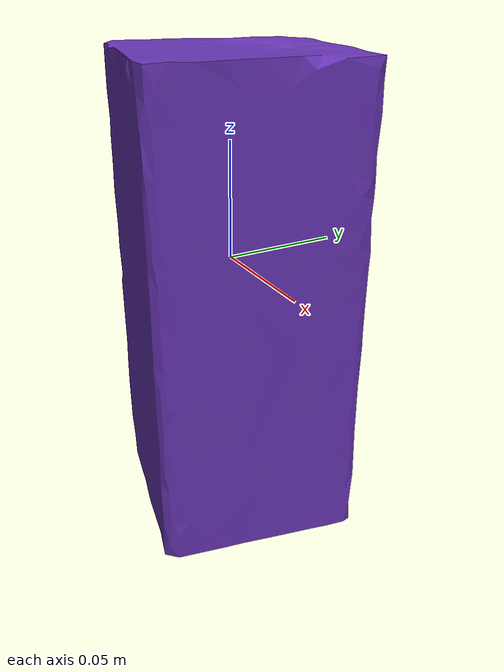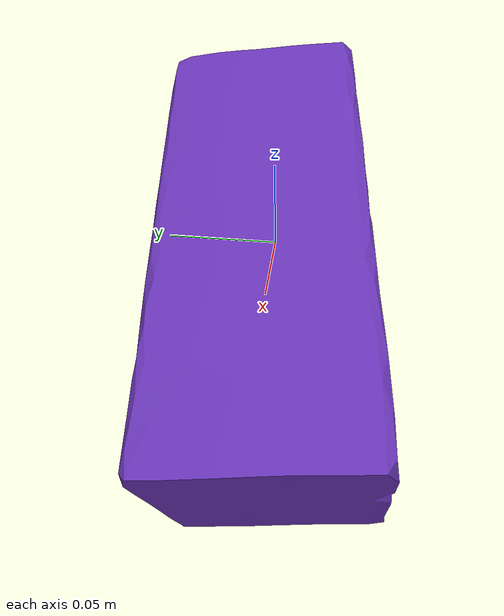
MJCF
<mujoco model="top_watertight_tiny">

  <asset>
    <mesh file="top_watertight_tiny.obj"/>
    <mesh file="top_watertight_tiny_collision_0.obj"/>
  </asset>
  <worldbody>
    <body name="top_watertight_tiny">
      <freejoint/>
      <geom solimp="0.90 0.95 0.001" solref="0.02 1.0" density="100" friction="0.95 0.4 0.3" rgba="0.4 0.2 0.7 1" mesh="top_watertight_tiny" group="2" type="mesh" contype="0" conaffinity="0"/>
      <geom solimp="0.90 0.95 0.001" solref="0.02 1.0" density="100" friction="0.95 0.4 0.3" mesh="top_watertight_tiny_collision_0" rgba="0.729146335623406 0.42703171117808747 0.9117846300517208 1" group="3" type="mesh"/>
    </body>
  </worldbody>
</mujoco>
